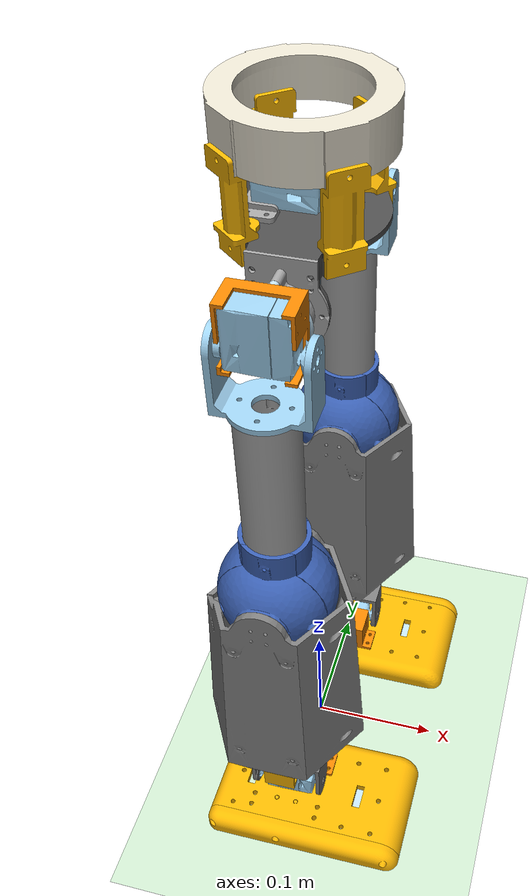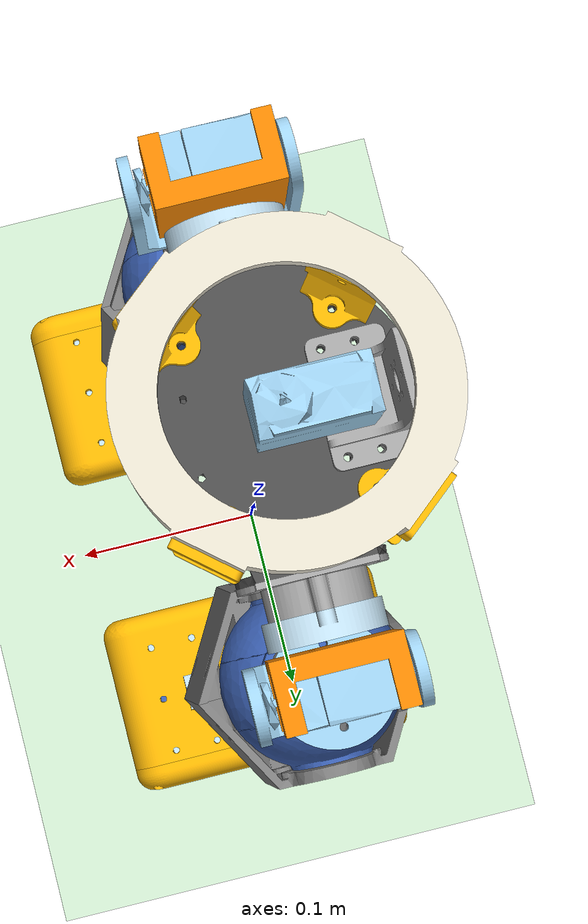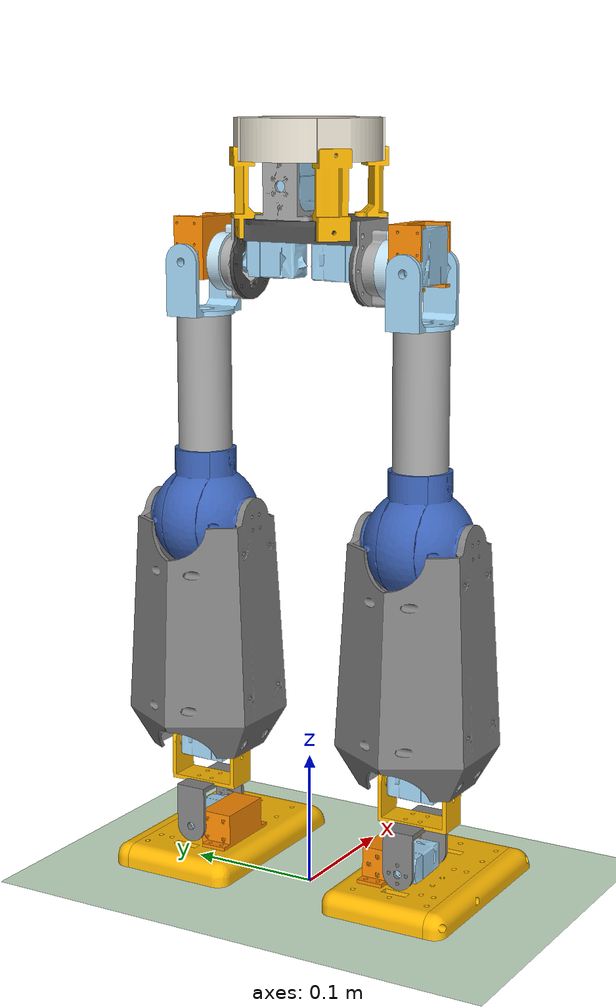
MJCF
<mujoco model="WildRobotDev">
  <option>
    <flag eulerdamp="disable" />
  </option>
  <include file="../common/scene.xml" />
  <include file="../common/mimic_sites.xml" />
  <compiler angle="radian" meshdir="assets" autolimits="true" />
  <default>
    <default class="WildRobotDev">
      <joint frictionloss="0.1" armature="0.005" />
      <position kp="50" dampratio="1" />
      <default class="visual">
        <geom type="mesh" contype="0" conaffinity="0" group="2" />
      </default>
      <default class="collision">
        <geom group="3" />
      </default>
    </default>
  </default>
  <worldbody>
    <body name="waist" pos="0 0 0.5" quat="1 0 0 0" childclass="WildRobotDev">
      <freejoint name="waist_freejoint" />
      <inertial pos="-0.00181517 -3.08835e-05 0.00596571" mass="0.439621" fullinertia="0.000998265 0.000698685 0.00070313 -7.22885e-08 1.38528e-05 5.24148e-07" />
      <geom type="mesh" class="visual" pos="-0.0596393 -0.00143119 -0.0273687" quat="0.706991 0.707223 -0 2.16453e-17" mesh="htd_45h_1circle" material="htd_45h_1circle_material" />
      <geom type="mesh" class="visual" pos="0.000128558 -0.000153209 0.12518" quat="0.34202 -1.65887e-17 -5.55112e-17 -0.939693" mesh="waist_trunk_support" material="waist_trunk_support_material" />
      <geom type="mesh" class="visual" pos="-1.8982e-19 0 0" quat="0.707107 0 0 -0.707107" mesh="trunk_bottom" material="trunk_bottom_material" />
      <geom type="mesh" class="visual" pos="-0.00619509 -0.059645 -0.00396881" quat="0.707107 0.000116219 0.000116219 0.707107" mesh="htd_45h_1circle" material="htd_45h_1circle_material" />
      <geom type="mesh" class="visual" pos="5.89806e-17 -3.1225e-17 0" quat="0.707107 0 0 -0.707107" mesh="trunk_servo_connect" material="trunk_servo_connect_material" />
      <geom type="mesh" class="visual" pos="1.38778e-17 -0.00025 1.47949e-17" quat="0.707107 0 0 0.707107" mesh="hip_cover" material="hip_cover_material" />
      <geom type="mesh" class="visual" pos="-1.59595e-16 -1.66533e-16 0.12518" quat="0.34202 -5.80156e-17 0 -0.939693" mesh="scroll_out" material="scroll_out_material" />
      <geom type="mesh" class="visual" pos="0.000128558 0.000153209 0.12518" quat="0.939693 -2.94205e-17 -1.35637e-16 -0.34202" mesh="waist_trunk_support" material="waist_trunk_support_material" />
      <geom type="mesh" class="visual" pos="1.38778e-17 -0.0001 1.53661e-17" quat="0.707107 0 1.11022e-16 0.707107" mesh="hip_trunk_connect" material="hip_trunk_connect_material" />
      <geom type="mesh" class="visual" pos="-0.000128558 -0.000153209 0.12518" quat="0.34202 -0 -5.91646e-31 0.939693" mesh="waist_trunk_support" material="waist_trunk_support_material" />
      <geom type="mesh" class="visual" pos="-0.000128558 0.000153209 0.12518" quat="0.939693 0 -0 0.34202" mesh="waist_trunk_support" material="waist_trunk_support_material" />
      <geom type="mesh" class="visual" pos="-1.38778e-17 0.00025 1.46954e-17" quat="0.707107 0 2.22045e-16 -0.707107" mesh="hip_cover" material="hip_cover_material" />
      <geom type="mesh" class="visual" pos="0.0596393 0.00143119 -0.0273687" quat="2.16453e-17 0 -0.707223 -0.706991" mesh="htd_45h_1circle" material="htd_45h_1circle_material" />
      <geom type="mesh" class="visual" pos="-1.38778e-17 0.0001 1.3452e-17" quat="0.707107 0 1.11022e-16 -0.707107" mesh="hip_trunk_connect" material="hip_trunk_connect_material" />
      <site group="3" name="pelvis_mimic" pos="0 0 0" quat="1 0 0 0" />
      <body name="right_hip" pos="4.74705e-05 -0.0536 -0.0335836" quat="0.706694 -0.707519 -0.000292013 0.000292354">
        <joint axis="0 0 1" name="right_hip_pitch" type="hinge" />
        <inertial pos="0.00272374 -0.00897832 -0.0331404" mass="0.0849728" fullinertia="2.00434e-05 1.92798e-05 2.44237e-05 -3.96751e-07 7.91944e-07 -1.48675e-06" />
        <geom type="mesh" class="visual" pos="-0.0254688 -0.0063813 -0.0961393" quat="0.000116219 -0.707107 -0.000116219 -0.707107" mesh="htd_45h_1circle" material="htd_45h_1circle_material" />
        <geom type="mesh" class="visual" pos="-0.0001 -0.03359 0.0566" quat="0.5 0.5 -0.5 0.5" mesh="hip_servo_hook_right" material="hip_servo_hook_right_material" />
        <site group="3" name="right_hip_mimic" pos="-0.000628163 -9.99278e-05 -0.0365495" quat="0.707102 0.707102 0.00246826 0.00246826" />
        <body name="upper_leg" pos="0.0267 -0.000166429 -0.0364525" quat="0.706814 -0.00041245 -0.707399 -0.000412109">
          <joint axis="0 0 1" name="right_hip_roll" type="hinge" />
          <inertial pos="-0.00104181 0.159312 0.0267034" mass="0.236565" fullinertia="0.000987068 0.000125887 0.000979617 9.86461e-06 9.63535e-09 1.07533e-06" />
          <geom type="mesh" class="visual" pos="-0.095 6.93889e-18 0.0267" quat="0.707107 0.707107 0 1.53191e-19" mesh="up_leg_servo_connect" material="up_leg_servo_connect_material" />
          <geom type="mesh" class="visual" pos="-9.71445e-17 0.174352 0.1872" quat="0.5 0.5 0.5 -0.5" mesh="icm45686" material="icm45686_material" />
          <geom type="mesh" class="visual" pos="-0.0948 -0.0004 0.0266985" quat="0.707105 0.707109 -2.84803e-06 2.84595e-06" mesh="knee_ball_left" material="knee_ball_left_material" />
          <geom type="mesh" class="visual" pos="-0.095 -0.0002 0.0267" quat="0.707107 0.707107 -0 -1.49817e-17" mesh="knee_ball_mid" material="knee_ball_mid_material" />
          <geom type="mesh" class="visual" pos="-0.095 6.93889e-18 0.0267" quat="0.707107 0.707107 1.11022e-16 -1.2958e-17" mesh="up_leg" material="up_leg_material" />
          <geom type="mesh" class="visual" pos="0.0253613 0.198628 -0.0329432" quat="0.706811 0.000530114 -0.707402 0.000526879" mesh="htd_45h_1circle" material="htd_45h_1circle_material" />
          <geom type="mesh" class="visual" pos="-0.0952 -0.000399963 0.0268019" quat="0.707365 0.706849 -2.31378e-05 2.31379e-05" mesh="knee_ball_right" material="knee_ball_right_material" />
          <site group="3" name="right_knee_mimic" pos="0.000338462 0.192501 0.0266257" quat="0.498751 0.501662 0.498337 -0.501241" />
          <body name="lower_leg" pos="-0.02685 0.192352 0.0267" quat="1.83705e-06 -0.707104 1.83913e-06 -0.70711">
            <joint axis="0 0 1" name="right_knee_pitch" type="hinge" />
            <inertial pos="-0.000521354 -0.101401 0.0270617" mass="0.380663" fullinertia="0.00177714 0.000669988 0.00168908 1.88914e-05 3.0835e-08 -3.5834e-05" />
            <geom type="mesh" class="visual" pos="-2.17547e-15 0.192752 -0.0677579" quat="0.5 -0.5 -0.5 -0.5" mesh="low_leg_right" material="low_leg_right_material" />
            <geom type="mesh" class="visual" pos="-2.47862e-16 0.192752 -0.0677579" quat="0.5 -0.5 -0.5 -0.5" mesh="low_leg_left" material="low_leg_left_material" />
            <geom type="mesh" class="visual" pos="0.0596393 -0.173769 0.0526109" quat="1.0103e-14 -3.0132e-18 -1 0.000164358" mesh="htd_45h_1circle" material="htd_45h_1circle_material" />
            <body name="right_ankle" pos="-4.74705e-05 -0.179984 0.000442075" quat="2.40923e-07 -0.00041321 0.000583051 -1">
              <joint axis="0 0 1" name="right_ankle_pitch" type="hinge" />
              <inertial pos="-0.000778386 0.0291765 0.0259275" mass="0.0230191" fullinertia="1.34186e-05 1.32703e-05 1.41853e-05 1.80568e-07 1.56329e-08 -2.24395e-07" />
              <geom type="mesh" class="visual" pos="2.17383e-17 0.0722 0.0268" quat="0.5 0.5 0.5 -0.5" mesh="servo_bracket_btm" material="servo_bracket_btm_material" />
              <geom type="mesh" class="visual" pos="3.65918e-18 0.0732 0.0268" quat="0.5 0.5 -0.5 0.5" mesh="servo_bracket_top" material="servo_bracket_top_material" />
              <body name="right_foot" pos="-0.0268 0.0594 0.0268" quat="0.5 0.5 -0.5 -0.5">
                <joint axis="0 0 1" name="right_foot_roll" type="hinge" />
                <inertial pos="-0.0182605 0.00187575 -0.0419443" mass="0.413618" fullinertia="0.000978456 0.000752203 0.000319832 -1.71895e-05 -3.90028e-05 -1.62365e-05" />
                <geom type="mesh" class="visual" pos="-0.0128256 0.159815 -0.0265243" quat="0.499915 0.500085 0.499502 0.500498" mesh="foot_main_right" material="foot_main_right_material" />
                <geom type="mesh" class="visual" pos="-0.0125255 -0.00118539 -0.0266289" quat="0.499915 0.500085 0.499502 0.500498" mesh="foot_btm_front" material="foot_btm_front_material" />
                <geom type="mesh" class="collision" pos="-0.0125255 -0.00118539 -0.0266289" quat="0.499915 0.500085 0.499502 0.500498" mesh="foot_btm_front" material="foot_btm_front_material" name="right_foot_btm_front" />
                <geom type="mesh" class="visual" pos="-0.0128256 0.159815 -0.0265243" quat="0.499915 0.500085 0.499502 0.500498" mesh="foot_side_right" material="foot_side_right_material" />
                <geom type="mesh" class="visual" pos="-0.0128254 -0.000185294 -0.0267108" quat="0.500498 -0.499502 0.500085 -0.499915" mesh="btm_servo_support" material="btm_servo_support_material" />
                <geom type="mesh" class="visual" pos="-0.0105255 -0.00118539 -0.0266273" quat="0.499915 0.500085 0.499502 0.500498" mesh="foot_btm_back" material="foot_btm_back_material" />
                <geom type="mesh" class="collision" pos="-0.0105255 -0.00118539 -0.0266273" quat="0.499915 0.500085 0.499502 0.500498" mesh="foot_btm_back" material="foot_btm_back_material" name="right_foot_btm_back" />
                <geom type="mesh" class="visual" pos="-0.0596436 0.0062757 -0.0522108" quat="1 0.00074741 -0.00041321 3.08837e-07" mesh="htd_45h_1circle" material="htd_45h_1circle_material" />
                <site group="3" name="right_foot_mimic" pos="-0.0294117 0.00930168 -0.0432369" quat="0.707399 0.000412109 0.706814 0.00041245" />
              </body>
            </body>
          </body>
        </body>
      </body>
      <body name="left_hip" pos="-4.74705e-05 0.0536 -0.0335836" quat="0.000292354 -0.000292013 0.707519 -0.706694">
        <joint axis="0 0 1" name="left_hip_pitch" type="hinge" />
        <inertial pos="-0.00291444 -0.00897832 -0.0331054" mass="0.0849728" fullinertia="2.00234e-05 1.92641e-05 2.44282e-05 3.89652e-07 -8.26001e-07 -1.4809e-06" />
        <geom type="mesh" class="visual" pos="-0.0001 -0.03359 0.0566" quat="0.5 0.5 0.5 -0.5" mesh="hip_servo_hook_left" material="hip_servo_hook_left_material" />
        <geom type="mesh" class="visual" pos="0.0252688 -0.0063813 0.0231393" quat="0.000116219 -0.707107 0.000116219 0.707107" mesh="htd_45h_1circle" material="htd_45h_1circle_material" />
        <site group="3" name="left_hip_mimic" pos="0.000428163 -9.99278e-05 -0.0364505" quat="0.00246826 -0.00246826 -0.707102 0.707102" />
        <body name="upper_leg_2" pos="-0.0269 -0.000166429 -0.0365475" quat="0.707399 -0.000412109 0.706814 0.00041245">
          <joint axis="0 0 1" name="left_hip_roll" type="hinge" />
          <inertial pos="-0.00104181 0.159312 0.0267034" mass="0.236565" fullinertia="0.000987068 0.000125887 0.000979617 9.86461e-06 9.63535e-09 1.07533e-06" />
          <geom type="mesh" class="visual" pos="-0.095 6.93889e-18 0.0267" quat="0.707107 0.707107 0 -2.15551e-19" mesh="up_leg_servo_connect" material="up_leg_servo_connect_material" />
          <geom type="mesh" class="visual" pos="5.55112e-17 0.174352 0.1872" quat="0.5 0.5 0.5 -0.5" mesh="icm45686" material="icm45686_material" />
          <geom type="mesh" class="visual" pos="-0.0948 -0.0004 0.0266985" quat="0.707105 0.707109 -2.84803e-06 2.84595e-06" mesh="knee_ball_left" material="knee_ball_left_material" />
          <geom type="mesh" class="visual" pos="-0.095 -0.0002 0.0267" quat="0.707107 0.707107 -1.11022e-16 1.05314e-16" mesh="knee_ball_mid" material="knee_ball_mid_material" />
          <geom type="mesh" class="visual" pos="-0.095 1.38778e-17 0.0267" quat="0.707107 0.707107 0 6.36741e-17" mesh="up_leg" material="up_leg_material" />
          <geom type="mesh" class="visual" pos="0.0253613 0.198628 -0.0329432" quat="0.706811 0.000530114 -0.707402 0.000526879" mesh="htd_45h_1circle" material="htd_45h_1circle_material" />
          <geom type="mesh" class="visual" pos="-0.0952 -0.000399963 0.0268019" quat="0.707365 0.706849 -2.31378e-05 2.31379e-05" mesh="knee_ball_right" material="knee_ball_right_material" />
          <site group="3" name="left_knee_mimic" pos="0.000338462 0.192501 0.0266257" quat="0.498751 0.501662 0.498337 -0.501241" />
          <body name="lower_leg_2" pos="-0.02685 0.192352 0.0267" quat="1.83705e-06 -0.707104 1.83913e-06 -0.70711">
            <joint axis="0 0 1" name="left_knee_pitch" type="hinge" />
            <inertial pos="-0.000521354 -0.101401 0.0270617" mass="0.380663" fullinertia="0.00177714 0.000669988 0.00168908 1.88914e-05 3.0835e-08 -3.5834e-05" />
            <geom type="mesh" class="visual" pos="-2.21559e-15 0.192752 -0.0677579" quat="0.5 -0.5 -0.5 -0.5" mesh="low_leg_right" material="low_leg_right_material" />
            <geom type="mesh" class="visual" pos="-2.87964e-16 0.192752 -0.0677579" quat="0.5 -0.5 -0.5 -0.5" mesh="low_leg_left" material="low_leg_left_material" />
            <geom type="mesh" class="visual" pos="0.0596393 -0.173769 0.0526109" quat="1.05471e-14 1.04263e-16 -1 0.000164358" mesh="htd_45h_1circle" material="htd_45h_1circle_material" />
            <body name="left_ankle" pos="-4.74705e-05 -0.179984 0.000442075" quat="2.40923e-07 -0.00041321 0.000583051 -1">
              <joint axis="0 0 1" name="left_ankle_pitch" type="hinge" />
              <inertial pos="0.000778386 0.0291765 0.0259275" mass="0.0230191" fullinertia="1.34186e-05 1.32703e-05 1.41853e-05 -1.80568e-07 -1.56329e-08 -2.24395e-07" />
              <geom type="mesh" class="visual" pos="-1.13299e-17 0.0722 0.0268" quat="0.5 0.5 -0.5 0.5" mesh="servo_bracket_btm" material="servo_bracket_btm_material" />
              <geom type="mesh" class="visual" pos="-4.77049e-18 0.0732 0.0268" quat="0.5 0.5 -0.5 0.5" mesh="servo_bracket_top" material="servo_bracket_top_material" />
              <body name="left_foot" pos="0.0268 0.0594 0.0268" quat="0.5 -0.5 0.5 -0.5">
                <joint axis="0 0 1" name="left_foot_roll" type="hinge" />
                <inertial pos="-0.0183724 0.00183883 -0.0102858" mass="0.413618" fullinertia="0.00096407 0.00073874 0.0003209 -1.74031e-05 2.95872e-05 1.47775e-05" />
                <geom type="mesh" class="visual" pos="-0.0128254 -0.000185294 -0.0267108" quat="0.500498 -0.499502 0.500085 -0.499915" mesh="btm_servo_support" material="btm_servo_support_material" />
                <geom type="mesh" class="visual" pos="-0.0596436 0.0062757 -0.0522108" quat="1 0.00074741 -0.00041321 3.08837e-07" mesh="htd_45h_1circle" material="htd_45h_1circle_material" />
                <geom type="mesh" class="visual" pos="-0.0125253 -0.0011852 -0.0267946" quat="0.500498 -0.499502 0.500085 -0.499915" mesh="foot_btm_back" material="foot_btm_back_material" />
                <geom type="mesh" class="collision" pos="-0.0125253 -0.0011852 -0.0267946" quat="0.500498 -0.499502 0.500085 -0.499915" mesh="foot_btm_back" material="foot_btm_back_material" name="left_foot_btm_back" />
                <geom type="mesh" class="visual" pos="-0.0128254 -0.000185294 -0.0267108" quat="0.500498 -0.499502 0.500085 -0.499915" mesh="foot_side" material="foot_side_material" />
                <geom type="mesh" class="visual" pos="-0.0128254 -0.000185294 -0.0267108" quat="0.500498 -0.499502 0.500085 -0.499915" mesh="foot_main" material="foot_main_material" />
                <geom type="mesh" class="visual" pos="-0.0125255 -0.00118539 -0.0266289" quat="0.500498 -0.499502 0.500085 -0.499915" mesh="foot_btm_front" material="foot_btm_front_material" />
                <geom type="mesh" class="collision" pos="-0.0125255 -0.00118539 -0.0266289" quat="0.500498 -0.499502 0.500085 -0.499915" mesh="foot_btm_front" material="foot_btm_front_material" name="left_foot_btm_front" />
                <site group="3" name="left_foot_mimic" pos="-0.0294391 0.00926314 -0.0101901" quat="0.00041245 -0.706814 0.000412109 -0.707399" />
              </body>
            </body>
          </body>
        </body>
      </body>
    </body>
  </worldbody>
  <asset>
    <mesh file="foot_btm_front.stl" />
    <mesh file="scroll_out.stl" />
    <mesh file="trunk_bottom.stl" />
    <mesh file="hip_servo_hook_right.stl" />
    <mesh file="foot_main.stl" />
    <mesh file="knee_ball_right.stl" />
    <mesh file="up_leg_servo_connect.stl" />
    <mesh file="foot_main_right.stl" />
    <mesh file="foot_btm_back.stl" />
    <mesh file="icm45686.stl" />
    <mesh file="foot_side.stl" />
    <mesh file="hip_cover.stl" />
    <mesh file="up_leg.stl" />
    <mesh file="foot_side_right.stl" />
    <mesh file="servo_bracket_top.stl" />
    <mesh file="knee_ball_mid.stl" />
    <mesh file="htd_45h_1circle.stl" />
    <mesh file="waist_trunk_support.stl" />
    <mesh file="servo_bracket_btm.stl" />
    <mesh file="btm_servo_support.stl" />
    <mesh file="hip_servo_hook_left.stl" />
    <mesh file="hip_trunk_connect.stl" />
    <mesh file="trunk_servo_connect.stl" />
    <mesh file="knee_ball_left.stl" />
    <mesh file="low_leg_left.stl" />
    <mesh file="low_leg_right.stl" />
    <material name="htd_45h_1circle_material" rgba="0.615686 0.811765 0.929412 1" />
    <material name="waist_trunk_support_material" rgba="0.980392 0.713725 0.00392157 1" />
    <material name="trunk_bottom_material" rgba="0.301961 0.301961 0.301961 1" />
    <material name="trunk_servo_connect_material" rgba="0.647059 0.647059 0.647059 1" />
    <material name="hip_cover_material" rgba="0.768627 0.886275 0.952941 1" />
    <material name="scroll_out_material" rgba="0.901961 0.878431 0.811765 1" />
    <material name="hip_trunk_connect_material" rgba="0.647059 0.647059 0.647059 1" />
    <material name="hip_servo_hook_right_material" rgba="0.972549 0.529412 0.00392157 1" />
    <material name="up_leg_servo_connect_material" rgba="0.615686 0.811765 0.929412 1" />
    <material name="icm45686_material" rgba="0.301961 0.301961 0.301961 1" />
    <material name="knee_ball_left_material" rgba="0.231373 0.380392 0.705882 1" />
    <material name="knee_ball_mid_material" rgba="0.231373 0.380392 0.705882 1" />
    <material name="up_leg_material" rgba="0.647059 0.647059 0.647059 1" />
    <material name="knee_ball_right_material" rgba="0.231373 0.380392 0.705882 1" />
    <material name="low_leg_right_material" rgba="0.498039 0.498039 0.498039 1" />
    <material name="low_leg_left_material" rgba="0.498039 0.498039 0.498039 1" />
    <material name="servo_bracket_btm_material" rgba="0.498039 0.498039 0.498039 1" />
    <material name="servo_bracket_top_material" rgba="0.980392 0.713725 0.00392157 1" />
    <material name="foot_main_right_material" rgba="0.980392 0.713725 0.00392157 1" />
    <material name="foot_btm_front_material" rgba="0.231373 0.380392 0.705882 1" />
    <material name="foot_side_right_material" rgba="0.980392 0.713725 0.00392157 1" />
    <material name="btm_servo_support_material" rgba="0.972549 0.529412 0.00392157 1" />
    <material name="foot_btm_back_material" rgba="0.768627 0.886275 0.952941 1" />
    <material name="hip_servo_hook_left_material" rgba="0.972549 0.529412 0.00392157 1" />
    <material name="foot_side_material" rgba="0.980392 0.713725 0.00392157 1" />
    <material name="foot_main_material" rgba="0.980392 0.713725 0.00392157 1" />
  </asset>
  <actuator>
    <position class="WildRobotDev" name="right_hip_pitch" joint="right_hip_pitch" />
    <position class="WildRobotDev" name="right_hip_roll" joint="right_hip_roll" />
    <position class="WildRobotDev" name="right_knee_pitch" joint="right_knee_pitch" />
    <position class="WildRobotDev" name="right_ankle_pitch" joint="right_ankle_pitch" />
    <position class="WildRobotDev" name="right_foot_roll" joint="right_foot_roll" />
    <position class="WildRobotDev" name="left_hip_pitch" joint="left_hip_pitch" />
    <position class="WildRobotDev" name="left_hip_roll" joint="left_hip_roll" />
    <position class="WildRobotDev" name="left_knee_pitch" joint="left_knee_pitch" />
    <position class="WildRobotDev" name="left_ankle_pitch" joint="left_ankle_pitch" />
    <position class="WildRobotDev" name="left_foot_roll" joint="left_foot_roll" />
  </actuator>
  <equality />
</mujoco>

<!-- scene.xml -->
git s<mujoco model="scene">

  <visual>
    <headlight diffuse="0.6 0.6 0.6" ambient="0.3 0.3 0.3" specular="0 0 0"/>
    <rgba haze="0.15 0.25 0.35 1"/>
    <global azimuth="-130" elevation="-20"/>
  </visual>

   <asset>
       <texture builtin="gradient" height="100" rgb1=".4 .5 .6" rgb2="0 0 0" type="skybox" width="100"/>
       <texture name="texplane" type="2d" builtin="checker" rgb1=".2 .3 .4" rgb2=".1 0.15 0.2" width="100" height="100"/>
       <material name="MatPlane" reflectance="0.5" texture="texplane" texrepeat="1 1" texuniform="true"/>
   </asset>

    <worldbody>
        <geom name="floor" friction="1 .1 .1" pos="0 0 0" size="0 0 0.125" type="plane" material="MatPlane" condim="3" conaffinity="1" contype="1" group="2" rgba="0.8 0.9 0.8 1"/>
        <light cutoff="1000" diffuse="1 1 1" dir="-0 0 -1.3" directional="true" exponent="1" pos="0 0 1.3" specular=".1 .1 .1" castshadow="false"/>
    </worldbody>
</mujoco>

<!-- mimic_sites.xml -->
<mujoco model="mimic_sites">
    <default>
    <default class="mimic">
        <site group="1" type="box" size="0.075 0.05 0.025" rgba="1.0 0.0 0.0 0.5"/>
    </default>
    </default>
</mujoco>
